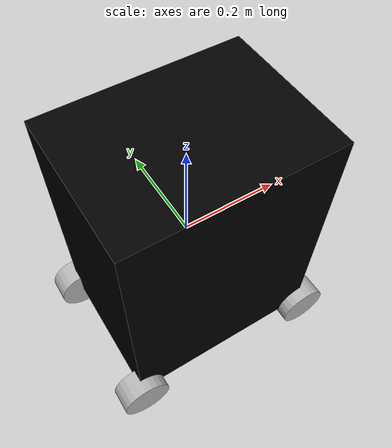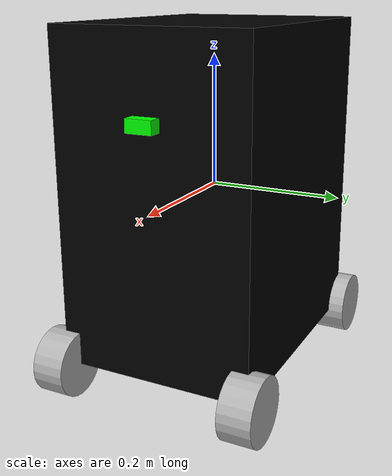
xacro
<?xml version="1.0"?>
<robot name="food_cart" xmlns:xacro="http://ros.org/wiki/xacro">

  <!-- 参数定义 -->
  <xacro:property name="body_length" value="0.4"/>
  <xacro:property name="body_width"  value="0.3"/>
  <xacro:property name="body_height" value="0.5"/>
  <xacro:property name="wheel_radius" value="0.05"/>
  <xacro:property name="wheel_length" value="0.05"/>
  <xacro:property name="wheel_y_offset" value="${body_width/2}"/>
  <xacro:property name="wheel_x_offset" value="${body_length/2}"/>
  <xacro:property name="wheel_z" value="${-body_height/2}"/>

  <link name="base_footprint">
    <visual>
      <origin xyz="0 0 0" rpy="0 0 0" />
      <geometry>
        <box size="0.05 0.05 0.001" />
      </geometry>
    </visual>
  </link>

  <joint name="base_footprint_joint" type="fixed" >
      <parent link="base_footprint" />
      <child link="base_link"/>
      <origin rpy="0 0 0" xyz="0 0 0"/>
  </joint>

  <!-- 车体 -->
  <link name="base_link">
    <inertial>
      <mass value="5.0"/>
      <inertia ixx="0.1" ixy="0" ixz="0" iyy="0.1" iyz="0" izz="0.1"/>
    </inertial>
    <visual>
      <origin xyz="0 0 0" rpy="0 0 0"/>
      <geometry>
        <box size="${body_length} ${body_width} ${body_height}"/>
      </geometry>
      <material name="black">
        <color rgba="0 0 0 1"/>
      </material>
    </visual>
    <collision>
      <origin xyz="0 0 0" rpy="0 0 0"/>
      <geometry>
        <box size="${body_length} ${body_width} ${body_height}"/>
      </geometry>
    </collision>
  </link>

  <!-- 轮子 link 宏，不带 joint -->
  <xacro:macro name="wheel_link" params="name">
    <link name="${name}">
      <inertial>
        <mass value="0.2"/>
        <inertia ixx="0.0005" ixy="0" ixz="0" iyy="0.0005" iyz="0" izz="0.0005"/>
      </inertial>
      <visual>
        <geometry>
          <cylinder length="${wheel_length}" radius="${wheel_radius}"/>
        </geometry>
        <origin xyz="0 0 0" rpy="1.5708 0 0"/>
        <material name="gray">
          <color rgba="0.7 0.7 0.7 1"/>
        </material>
      </visual>
      <collision>
      <origin xyz="0 0 0" rpy="1.5708 0 0"/>
        <geometry>
          <cylinder length="${wheel_length}" radius="${wheel_radius}"/>
        </geometry>
      </collision>
    </link>
  </xacro:macro>

  <!-- 四个轮子的 link -->
  <xacro:wheel_link name="front_left_wheel"/>
  <xacro:wheel_link name="front_right_wheel"/>
  <xacro:wheel_link name="rear_left_wheel"/>
  <xacro:wheel_link name="rear_right_wheel"/>

  <!-- 四个轮子的 joint -->
  <!-- 左前 -->
  <joint name="front_left_wheel_joint" type="continuous">
    <parent link="base_link"/>
    <child link="front_left_wheel"/>
    <origin xyz="${wheel_x_offset} ${ wheel_y_offset} ${wheel_z}" rpy="0 0 0"/>
    <axis xyz="0 1 0"/>
  </joint>

  <joint name="front_right_wheel_joint" type="continuous">
    <parent link="base_link"/>
    <child link="front_right_wheel"/>
    <origin xyz="${ wheel_x_offset} ${-wheel_y_offset} ${ wheel_z }" rpy="0 0 0"/>
    <axis xyz="0 1 0"/>
  </joint>

  <!-- 左后 -->
  <joint name="rear_left_wheel_joint" type="continuous">
    <parent link="base_link"/>
    <child link="rear_left_wheel"/>
    <origin xyz="${-wheel_x_offset} ${ wheel_y_offset} ${ wheel_z }" rpy="0 0 0"/>
    <axis xyz="0 1 0"/>
  </joint>

  <joint name="rear_right_wheel_joint" type="continuous">
    <parent link="base_link"/>
    <child link="rear_right_wheel"/>
    <origin xyz="${-wheel_x_offset} ${-wheel_y_offset} ${ wheel_z }" rpy="0 0 0"/>
    <axis xyz="0 1 0"/>
  </joint>

  <!-- 深度相机 -->
  <link name="camera_link">
    <visual>
      <geometry>
        <box size="0.04 0.04 0.02"/>
      </geometry>
      <origin xyz="0 0 0" rpy="0 0 0"/>
      <material name="green">
        <color rgba="0 1 0 1"/>
      </material>
    </visual>
  </link>
  <joint name="camera_joint" type="fixed">
    <parent link="base_link"/>
    <child link="camera_link"/>
    <origin xyz="${body_length/2} 0 ${body_height/4}" rpy="0 0 0"/>
  </joint>

  <link name="camera_optical_frame"/>

  <joint name="camera_optical_joint" type="fixed">
    <parent link="camera_link"/>
    <child link="camera_optical_frame"/>
    <origin xyz="0 0 0" rpy="-1.5708 0 -1.5708"/> <!-- 将坐标系旋转为光学格式 -->
  </joint>

  <!-- IMU -->
  <link name="imu_link">
    <visual>
      <geometry>
        <box size="0.02 0.02 0.02"/>
      </geometry>
      <origin xyz="0 0 0" rpy="0 0 0"/>
      <material name="red">
        <color rgba="1 0 0 1"/>
      </material>
    </visual>
  </link>
  <joint name="imu_joint" type="fixed">
    <parent link="base_link"/>
    <child link="imu_link"/>
    <origin xyz="0 0 0" rpy="0 0 0"/>
  </joint>

  <!-- Gazebo plugins：差速驱动 -->
  <gazebo>
    <plugin name="skid_steer_drive_controller" filename="libgazebo_ros_skid_steer_drive.so">
      <updateRate>100.0</updateRate>
      <leftFrontJoint>front_left_wheel_joint</leftFrontJoint>
      <rightFrontJoint>front_right_wheel_joint</rightFrontJoint>
      <leftRearJoint>rear_left_wheel_joint</leftRearJoint>
      <rightRearJoint>rear_right_wheel_joint</rightRearJoint>
      <wheelSeparation>0.25</wheelSeparation>
      <wheelDiameter>${wheel_radius*2}</wheelDiameter>
      <robotBaseFrame>base_footprint</robotBaseFrame>
      <torque>20</torque>
      <topicName>cmd_vel</topicName>
      <broadcastTF>true</broadcastTF>
    </plugin>
  </gazebo>

  <!-- Gazebo 插件：IMU -->
<gazebo reference="imu_link">
    <gravity>true</gravity>
    <sensor name="imu_sensor" type="imu">
      <always_on>true</always_on>
      <update_rate>100</update_rate>
      <visualize>true</visualize>
      <topic>__default_topic__</topic>
      <plugin filename="libgazebo_ros_imu_sensor.so" name="imu_plugin">
        <topicName>imu/data</topicName>
        <bodyName>imu_link</bodyName>
        <updateRateHZ>30</updateRateHZ>
        <gaussianNoise>0.0</gaussianNoise>
        <xyzOffset>0 0 0</xyzOffset>
        <rpyOffset>0 0 0</rpyOffset>
        <frameName>imu_link</frameName>
        <initialOrientationAsReference>false</initialOrientationAsReference>
      </plugin>
      <pose>0 0 0 0 0 0</pose>
    </sensor>
  </gazebo>

  <!-- Gazebo 插件：深度相机 -->
<xacro:property name="camera_name" value="camera_link"/>

<gazebo reference="camera_link">
  <sensor name="rgbd_camera" type="depth">
    <update_rate>30</update_rate>
    <camera>
      <horizontal_fov>1.047198</horizontal_fov>
      <image>
        <width>640</width>
        <height>480</height>
        <format>R8G8B8</format>
      </image>
      <clip>
        <near>0.05</near>
        <far>3</far>
      </clip>
    </camera>
    <plugin name="depth_controller" filename="libgazebo_ros_openni_kinect.so">
      <baseline>0.2</baseline>
      <alwaysOn>true</alwaysOn>
      <updateRate>30</updateRate>
      <cameraName>${camera_name}_ir</cameraName>
      <imageTopicName>/${camera_name}/color/image_raw</imageTopicName>
      <cameraInfoTopicName>/${camera_name}/color/camera_info</cameraInfoTopicName>
      <depthImageTopicName>/${camera_name}/depth/image_raw</depthImageTopicName>
      <depthImageInfoTopicName>/${camera_name}/depth/camera_info</depthImageInfoTopicName>
      <pointCloudTopicName>/${camera_name}/depth/points</pointCloudTopicName>
      <frameName>camera_optical_frame</frameName>
      <pointCloudCutoff>0.5</pointCloudCutoff>
      <pointCloudCutoffMax>3.0</pointCloudCutoffMax>
      <distortionK1>0.00000001</distortionK1>
      <distortionK2>0.00000001</distortionK2>
      <distortionK3>0.00000001</distortionK3>
      <distortionT1>0.00000001</distortionT1>
      <distortionT2>0.00000001</distortionT2>
      <CxPrime>0</CxPrime>
      <Cx>0</Cx>
      <Cy>0</Cy>
      <focalLength>0</focalLength>
      <hackBaseline>0</hackBaseline>
    </plugin>
  </sensor>
</gazebo>

  <!-- 激光雷达 -->

    <!-- Gazebo 插件：雷达 -->

</robot>
